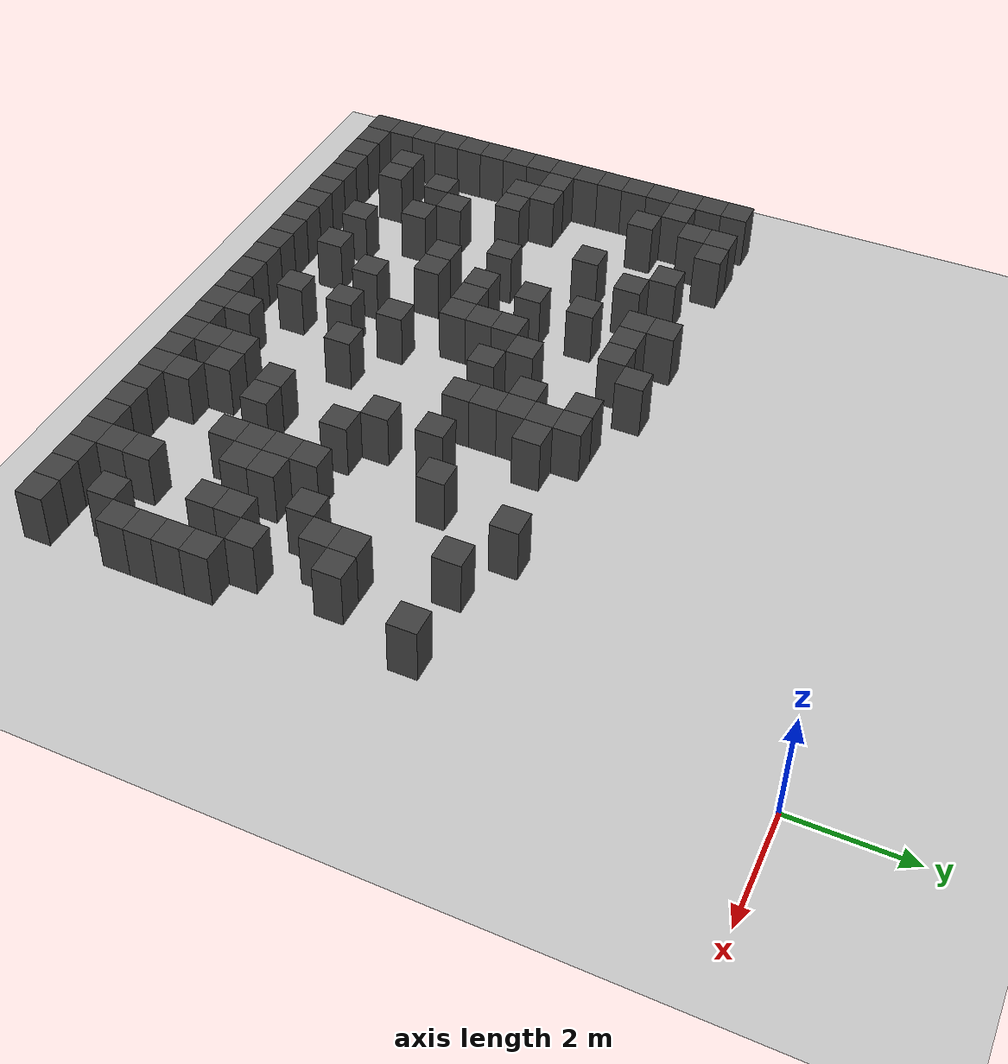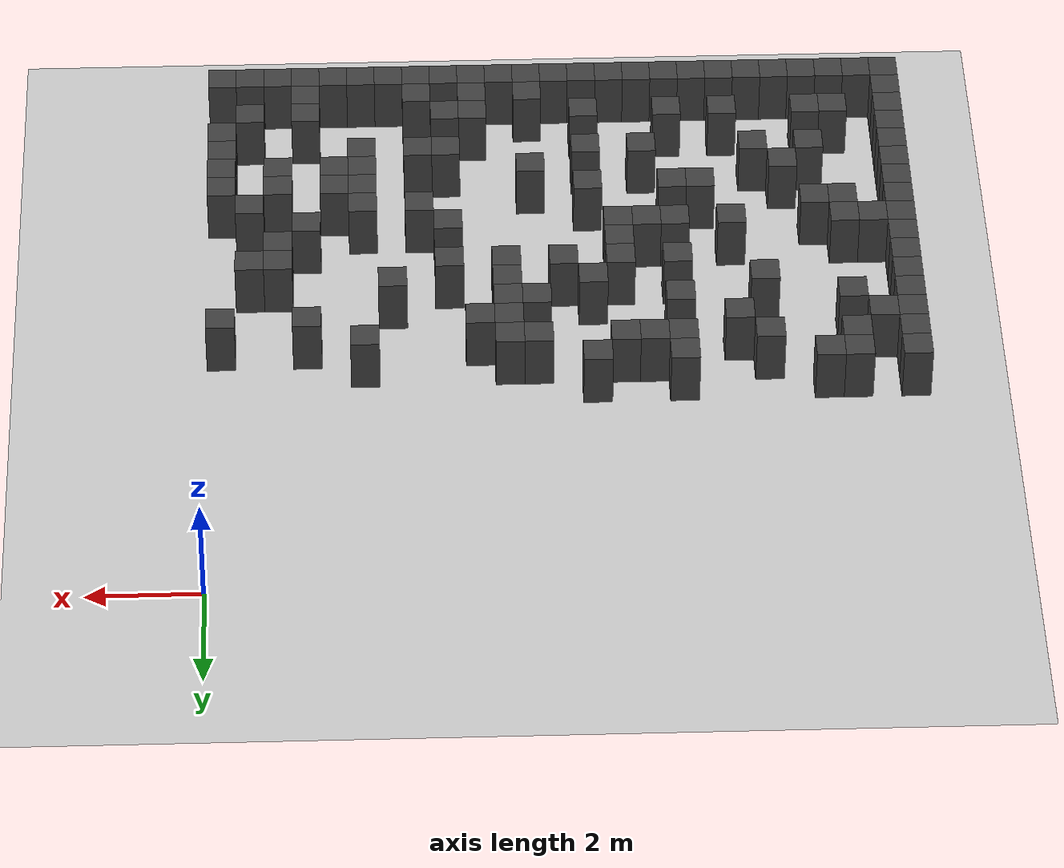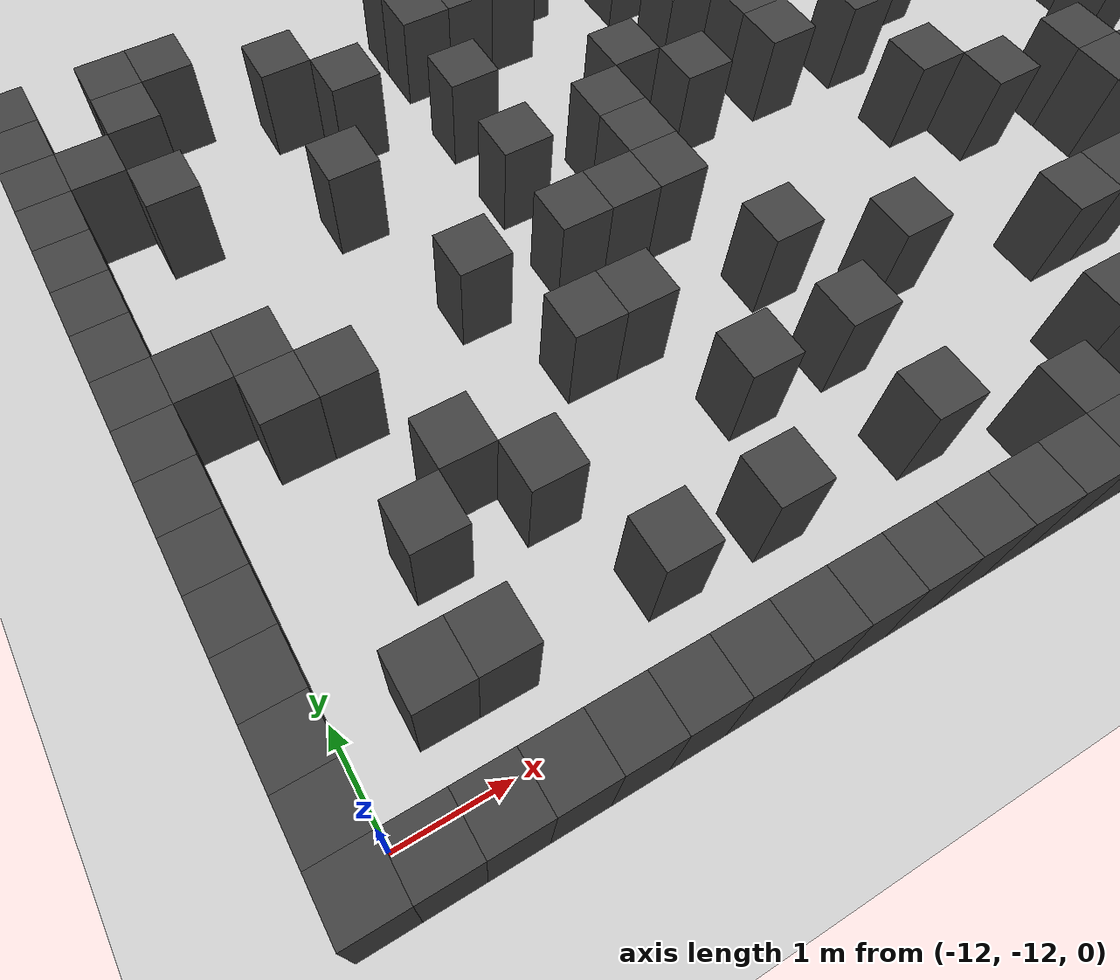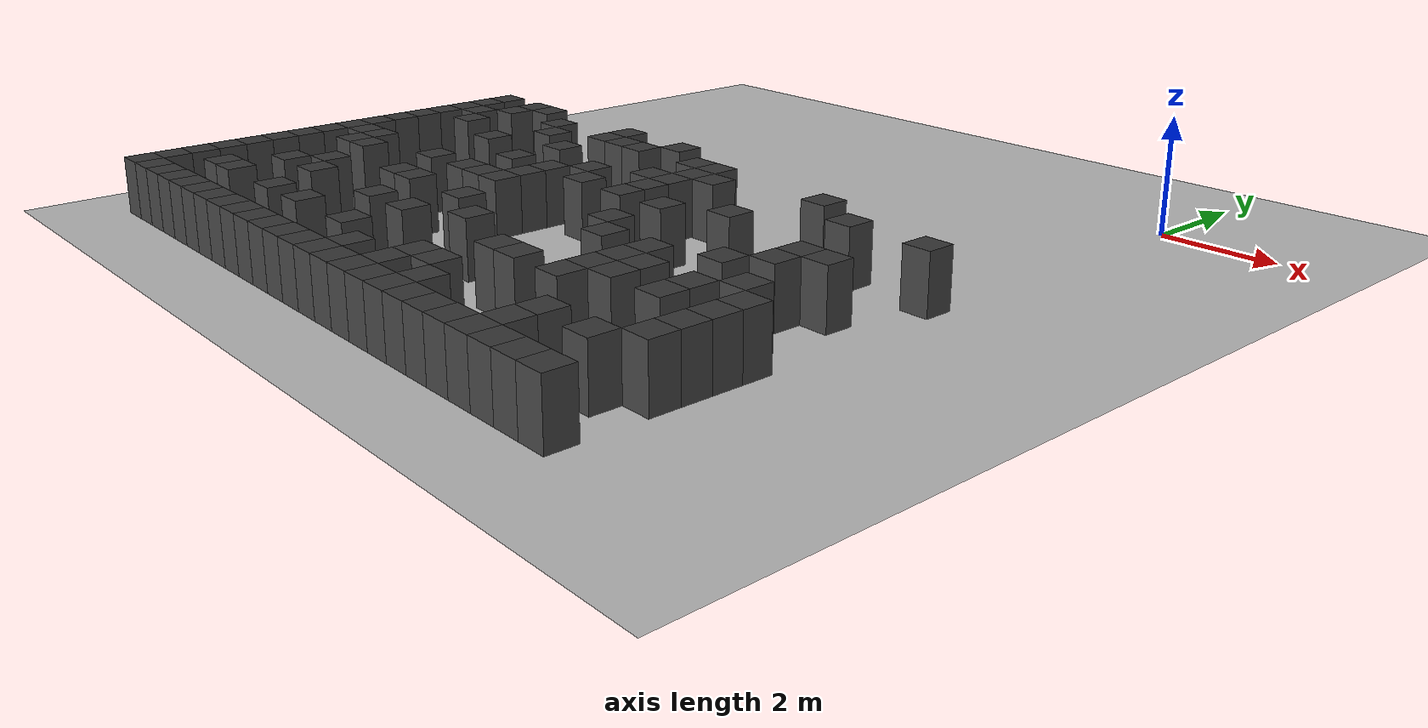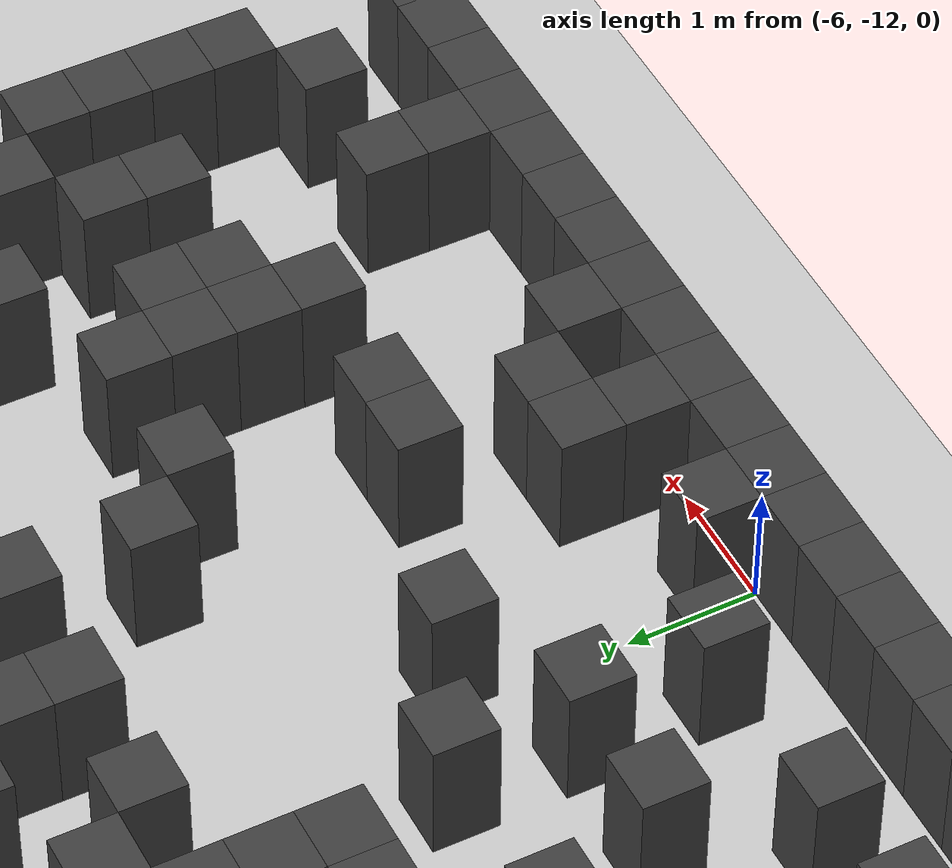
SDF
<sdf version="1.7">
 <world name="map_4951">
  <model name="ground_plane">
   <static>true</static>
   <link name="link">
    <collision name="collision">
     <geometry><plane><normal>0 0 1</normal><size>200 200</size></plane></geometry>
    </collision>
    <visual name="visual">
     <geometry><plane><normal>0 0 1</normal><size>200 200</size></plane></geometry>
     <material><ambient>0.8 0.8 0.8 1</ambient><diffuse>0.8 0.8 0.8 1</diffuse></material>
    </visual>
   </link>
  </model>
  <model name="maze_environment">
   <static>true</static>
   <link name="wall_485">
    <pose>-12.250 -4.750 0.500 0 0 0</pose>
    <collision name="col"><geometry><box><size>0.5 0.5 1.0</size></box></geometry></collision>
    <visual name="vis">
     <geometry><box><size>0.5 0.5 1.0</size></box></geometry>
     <material><ambient>0.15 0.15 0.15 1</ambient><diffuse>0.25 0.25 0.25 1</diffuse></material>
    </visual>
   </link>
   <link name="wall_486">
    <pose>-11.250 -4.750 0.500 0 0 0</pose>
    <collision name="col"><geometry><box><size>0.5 0.5 1.0</size></box></geometry></collision>
    <visual name="vis">
     <geometry><box><size>0.5 0.5 1.0</size></box></geometry>
     <material><ambient>0.15 0.15 0.15 1</ambient><diffuse>0.25 0.25 0.25 1</diffuse></material>
    </visual>
   </link>
   <link name="wall_487">
    <pose>-10.750 -4.750 0.500 0 0 0</pose>
    <collision name="col"><geometry><box><size>0.5 0.5 1.0</size></box></geometry></collision>
    <visual name="vis">
     <geometry><box><size>0.5 0.5 1.0</size></box></geometry>
     <material><ambient>0.15 0.15 0.15 1</ambient><diffuse>0.25 0.25 0.25 1</diffuse></material>
    </visual>
   </link>
   <link name="wall_488">
    <pose>-8.250 -4.750 0.500 0 0 0</pose>
    <collision name="col"><geometry><box><size>0.5 0.5 1.0</size></box></geometry></collision>
    <visual name="vis">
     <geometry><box><size>0.5 0.5 1.0</size></box></geometry>
     <material><ambient>0.15 0.15 0.15 1</ambient><diffuse>0.25 0.25 0.25 1</diffuse></material>
    </visual>
   </link>
   <link name="wall_489">
    <pose>-6.750 -4.750 0.500 0 0 0</pose>
    <collision name="col"><geometry><box><size>0.5 0.5 1.0</size></box></geometry></collision>
    <visual name="vis">
     <geometry><box><size>0.5 0.5 1.0</size></box></geometry>
     <material><ambient>0.15 0.15 0.15 1</ambient><diffuse>0.25 0.25 0.25 1</diffuse></material>
    </visual>
   </link>
   <link name="wall_501">
    <pose>-12.250 -5.250 0.500 0 0 0</pose>
    <collision name="col"><geometry><box><size>0.5 0.5 1.0</size></box></geometry></collision>
    <visual name="vis">
     <geometry><box><size>0.5 0.5 1.0</size></box></geometry>
     <material><ambient>0.15 0.15 0.15 1</ambient><diffuse>0.25 0.25 0.25 1</diffuse></material>
    </visual>
   </link>
   <link name="wall_502">
    <pose>-11.250 -5.250 0.500 0 0 0</pose>
    <collision name="col"><geometry><box><size>0.5 0.5 1.0</size></box></geometry></collision>
    <visual name="vis">
     <geometry><box><size>0.5 0.5 1.0</size></box></geometry>
     <material><ambient>0.15 0.15 0.15 1</ambient><diffuse>0.25 0.25 0.25 1</diffuse></material>
    </visual>
   </link>
   <link name="wall_503">
    <pose>-9.750 -5.250 0.500 0 0 0</pose>
    <collision name="col"><geometry><box><size>0.5 0.5 1.0</size></box></geometry></collision>
    <visual name="vis">
     <geometry><box><size>0.5 0.5 1.0</size></box></geometry>
     <material><ambient>0.15 0.15 0.15 1</ambient><diffuse>0.25 0.25 0.25 1</diffuse></material>
    </visual>
   </link>
   <link name="wall_504">
    <pose>-8.250 -5.250 0.500 0 0 0</pose>
    <collision name="col"><geometry><box><size>0.5 0.5 1.0</size></box></geometry></collision>
    <visual name="vis">
     <geometry><box><size>0.5 0.5 1.0</size></box></geometry>
     <material><ambient>0.15 0.15 0.15 1</ambient><diffuse>0.25 0.25 0.25 1</diffuse></material>
    </visual>
   </link>
   <link name="wall_505">
    <pose>-7.750 -5.250 0.500 0 0 0</pose>
    <collision name="col"><geometry><box><size>0.5 0.5 1.0</size></box></geometry></collision>
    <visual name="vis">
     <geometry><box><size>0.5 0.5 1.0</size></box></geometry>
     <material><ambient>0.15 0.15 0.15 1</ambient><diffuse>0.25 0.25 0.25 1</diffuse></material>
    </visual>
   </link>
   <link name="wall_506">
    <pose>-7.250 -5.250 0.500 0 0 0</pose>
    <collision name="col"><geometry><box><size>0.5 0.5 1.0</size></box></geometry></collision>
    <visual name="vis">
     <geometry><box><size>0.5 0.5 1.0</size></box></geometry>
     <material><ambient>0.15 0.15 0.15 1</ambient><diffuse>0.25 0.25 0.25 1</diffuse></material>
    </visual>
   </link>
   <link name="wall_507">
    <pose>-5.750 -5.250 0.500 0 0 0</pose>
    <collision name="col"><geometry><box><size>0.5 0.5 1.0</size></box></geometry></collision>
    <visual name="vis">
     <geometry><box><size>0.5 0.5 1.0</size></box></geometry>
     <material><ambient>0.15 0.15 0.15 1</ambient><diffuse>0.25 0.25 0.25 1</diffuse></material>
    </visual>
   </link>
   <link name="wall_508">
    <pose>-5.250 -5.250 0.500 0 0 0</pose>
    <collision name="col"><geometry><box><size>0.5 0.5 1.0</size></box></geometry></collision>
    <visual name="vis">
     <geometry><box><size>0.5 0.5 1.0</size></box></geometry>
     <material><ambient>0.15 0.15 0.15 1</ambient><diffuse>0.25 0.25 0.25 1</diffuse></material>
    </visual>
   </link>
   <link name="wall_509">
    <pose>-2.750 -5.250 0.500 0 0 0</pose>
    <collision name="col"><geometry><box><size>0.5 0.5 1.0</size></box></geometry></collision>
    <visual name="vis">
     <geometry><box><size>0.5 0.5 1.0</size></box></geometry>
     <material><ambient>0.15 0.15 0.15 1</ambient><diffuse>0.25 0.25 0.25 1</diffuse></material>
    </visual>
   </link>
   <link name="wall_517">
    <pose>-12.250 -5.750 0.500 0 0 0</pose>
    <collision name="col"><geometry><box><size>0.5 0.5 1.0</size></box></geometry></collision>
    <visual name="vis">
     <geometry><box><size>0.5 0.5 1.0</size></box></geometry>
     <material><ambient>0.15 0.15 0.15 1</ambient><diffuse>0.25 0.25 0.25 1</diffuse></material>
    </visual>
   </link>
   <link name="wall_518">
    <pose>-11.750 -5.750 0.500 0 0 0</pose>
    <collision name="col"><geometry><box><size>0.5 0.5 1.0</size></box></geometry></collision>
    <visual name="vis">
     <geometry><box><size>0.5 0.5 1.0</size></box></geometry>
     <material><ambient>0.15 0.15 0.15 1</ambient><diffuse>0.25 0.25 0.25 1</diffuse></material>
    </visual>
   </link>
   <link name="wall_519">
    <pose>-9.250 -5.750 0.500 0 0 0</pose>
    <collision name="col"><geometry><box><size>0.5 0.5 1.0</size></box></geometry></collision>
    <visual name="vis">
     <geometry><box><size>0.5 0.5 1.0</size></box></geometry>
     <material><ambient>0.15 0.15 0.15 1</ambient><diffuse>0.25 0.25 0.25 1</diffuse></material>
    </visual>
   </link>
   <link name="wall_520">
    <pose>-5.250 -5.750 0.500 0 0 0</pose>
    <collision name="col"><geometry><box><size>0.5 0.5 1.0</size></box></geometry></collision>
    <visual name="vis">
     <geometry><box><size>0.5 0.5 1.0</size></box></geometry>
     <material><ambient>0.15 0.15 0.15 1</ambient><diffuse>0.25 0.25 0.25 1</diffuse></material>
    </visual>
   </link>
   <link name="wall_521">
    <pose>-4.750 -5.750 0.500 0 0 0</pose>
    <collision name="col"><geometry><box><size>0.5 0.5 1.0</size></box></geometry></collision>
    <visual name="vis">
     <geometry><box><size>0.5 0.5 1.0</size></box></geometry>
     <material><ambient>0.15 0.15 0.15 1</ambient><diffuse>0.25 0.25 0.25 1</diffuse></material>
    </visual>
   </link>
   <link name="wall_522">
    <pose>-1.750 -5.750 0.500 0 0 0</pose>
    <collision name="col"><geometry><box><size>0.5 0.5 1.0</size></box></geometry></collision>
    <visual name="vis">
     <geometry><box><size>0.5 0.5 1.0</size></box></geometry>
     <material><ambient>0.15 0.15 0.15 1</ambient><diffuse>0.25 0.25 0.25 1</diffuse></material>
    </visual>
   </link>
   <link name="wall_523">
    <pose>-0.250 -5.750 0.500 0 0 0</pose>
    <collision name="col"><geometry><box><size>0.5 0.5 1.0</size></box></geometry></collision>
    <visual name="vis">
     <geometry><box><size>0.5 0.5 1.0</size></box></geometry>
     <material><ambient>0.15 0.15 0.15 1</ambient><diffuse>0.25 0.25 0.25 1</diffuse></material>
    </visual>
   </link>
   <link name="wall_529">
    <pose>-12.250 -6.250 0.500 0 0 0</pose>
    <collision name="col"><geometry><box><size>0.5 0.5 1.0</size></box></geometry></collision>
    <visual name="vis">
     <geometry><box><size>0.5 0.5 1.0</size></box></geometry>
     <material><ambient>0.15 0.15 0.15 1</ambient><diffuse>0.25 0.25 0.25 1</diffuse></material>
    </visual>
   </link>
   <link name="wall_530">
    <pose>-11.250 -6.250 0.500 0 0 0</pose>
    <collision name="col"><geometry><box><size>0.5 0.5 1.0</size></box></geometry></collision>
    <visual name="vis">
     <geometry><box><size>0.5 0.5 1.0</size></box></geometry>
     <material><ambient>0.15 0.15 0.15 1</ambient><diffuse>0.25 0.25 0.25 1</diffuse></material>
    </visual>
   </link>
   <link name="wall_531">
    <pose>-8.250 -6.250 0.500 0 0 0</pose>
    <collision name="col"><geometry><box><size>0.5 0.5 1.0</size></box></geometry></collision>
    <visual name="vis">
     <geometry><box><size>0.5 0.5 1.0</size></box></geometry>
     <material><ambient>0.15 0.15 0.15 1</ambient><diffuse>0.25 0.25 0.25 1</diffuse></material>
    </visual>
   </link>
   <link name="wall_532">
    <pose>-5.750 -6.250 0.500 0 0 0</pose>
    <collision name="col"><geometry><box><size>0.5 0.5 1.0</size></box></geometry></collision>
    <visual name="vis">
     <geometry><box><size>0.5 0.5 1.0</size></box></geometry>
     <material><ambient>0.15 0.15 0.15 1</ambient><diffuse>0.25 0.25 0.25 1</diffuse></material>
    </visual>
   </link>
   <link name="wall_533">
    <pose>-5.250 -6.250 0.500 0 0 0</pose>
    <collision name="col"><geometry><box><size>0.5 0.5 1.0</size></box></geometry></collision>
    <visual name="vis">
     <geometry><box><size>0.5 0.5 1.0</size></box></geometry>
     <material><ambient>0.15 0.15 0.15 1</ambient><diffuse>0.25 0.25 0.25 1</diffuse></material>
    </visual>
   </link>
   <link name="wall_540">
    <pose>-12.250 -6.750 0.500 0 0 0</pose>
    <collision name="col"><geometry><box><size>0.5 0.5 1.0</size></box></geometry></collision>
    <visual name="vis">
     <geometry><box><size>0.5 0.5 1.0</size></box></geometry>
     <material><ambient>0.15 0.15 0.15 1</ambient><diffuse>0.25 0.25 0.25 1</diffuse></material>
    </visual>
   </link>
   <link name="wall_541">
    <pose>-9.750 -6.750 0.500 0 0 0</pose>
    <collision name="col"><geometry><box><size>0.5 0.5 1.0</size></box></geometry></collision>
    <visual name="vis">
     <geometry><box><size>0.5 0.5 1.0</size></box></geometry>
     <material><ambient>0.15 0.15 0.15 1</ambient><diffuse>0.25 0.25 0.25 1</diffuse></material>
    </visual>
   </link>
   <link name="wall_542">
    <pose>-6.750 -6.750 0.500 0 0 0</pose>
    <collision name="col"><geometry><box><size>0.5 0.5 1.0</size></box></geometry></collision>
    <visual name="vis">
     <geometry><box><size>0.5 0.5 1.0</size></box></geometry>
     <material><ambient>0.15 0.15 0.15 1</ambient><diffuse>0.25 0.25 0.25 1</diffuse></material>
    </visual>
   </link>
   <link name="wall_543">
    <pose>-5.250 -6.750 0.500 0 0 0</pose>
    <collision name="col"><geometry><box><size>0.5 0.5 1.0</size></box></geometry></collision>
    <visual name="vis">
     <geometry><box><size>0.5 0.5 1.0</size></box></geometry>
     <material><ambient>0.15 0.15 0.15 1</ambient><diffuse>0.25 0.25 0.25 1</diffuse></material>
    </visual>
   </link>
   <link name="wall_544">
    <pose>-3.250 -6.750 0.500 0 0 0</pose>
    <collision name="col"><geometry><box><size>0.5 0.5 1.0</size></box></geometry></collision>
    <visual name="vis">
     <geometry><box><size>0.5 0.5 1.0</size></box></geometry>
     <material><ambient>0.15 0.15 0.15 1</ambient><diffuse>0.25 0.25 0.25 1</diffuse></material>
    </visual>
   </link>
   <link name="wall_551">
    <pose>-12.250 -7.250 0.500 0 0 0</pose>
    <collision name="col"><geometry><box><size>0.5 0.5 1.0</size></box></geometry></collision>
    <visual name="vis">
     <geometry><box><size>0.5 0.5 1.0</size></box></geometry>
     <material><ambient>0.15 0.15 0.15 1</ambient><diffuse>0.25 0.25 0.25 1</diffuse></material>
    </visual>
   </link>
   <link name="wall_552">
    <pose>-8.250 -7.250 0.500 0 0 0</pose>
    <collision name="col"><geometry><box><size>0.5 0.5 1.0</size></box></geometry></collision>
    <visual name="vis">
     <geometry><box><size>0.5 0.5 1.0</size></box></geometry>
     <material><ambient>0.15 0.15 0.15 1</ambient><diffuse>0.25 0.25 0.25 1</diffuse></material>
    </visual>
   </link>
   <link name="wall_553">
    <pose>-7.250 -7.250 0.500 0 0 0</pose>
    <collision name="col"><geometry><box><size>0.5 0.5 1.0</size></box></geometry></collision>
    <visual name="vis">
     <geometry><box><size>0.5 0.5 1.0</size></box></geometry>
     <material><ambient>0.15 0.15 0.15 1</ambient><diffuse>0.25 0.25 0.25 1</diffuse></material>
    </visual>
   </link>
   <link name="wall_554">
    <pose>-6.250 -7.250 0.500 0 0 0</pose>
    <collision name="col"><geometry><box><size>0.5 0.5 1.0</size></box></geometry></collision>
    <visual name="vis">
     <geometry><box><size>0.5 0.5 1.0</size></box></geometry>
     <material><ambient>0.15 0.15 0.15 1</ambient><diffuse>0.25 0.25 0.25 1</diffuse></material>
    </visual>
   </link>
   <link name="wall_555">
    <pose>-5.250 -7.250 0.500 0 0 0</pose>
    <collision name="col"><geometry><box><size>0.5 0.5 1.0</size></box></geometry></collision>
    <visual name="vis">
     <geometry><box><size>0.5 0.5 1.0</size></box></geometry>
     <material><ambient>0.15 0.15 0.15 1</ambient><diffuse>0.25 0.25 0.25 1</diffuse></material>
    </visual>
   </link>
   <link name="wall_556">
    <pose>-4.250 -7.250 0.500 0 0 0</pose>
    <collision name="col"><geometry><box><size>0.5 0.5 1.0</size></box></geometry></collision>
    <visual name="vis">
     <geometry><box><size>0.5 0.5 1.0</size></box></geometry>
     <material><ambient>0.15 0.15 0.15 1</ambient><diffuse>0.25 0.25 0.25 1</diffuse></material>
    </visual>
   </link>
   <link name="wall_557">
    <pose>-1.250 -7.250 0.500 0 0 0</pose>
    <collision name="col"><geometry><box><size>0.5 0.5 1.0</size></box></geometry></collision>
    <visual name="vis">
     <geometry><box><size>0.5 0.5 1.0</size></box></geometry>
     <material><ambient>0.15 0.15 0.15 1</ambient><diffuse>0.25 0.25 0.25 1</diffuse></material>
    </visual>
   </link>
   <link name="wall_558">
    <pose>-0.750 -7.250 0.500 0 0 0</pose>
    <collision name="col"><geometry><box><size>0.5 0.5 1.0</size></box></geometry></collision>
    <visual name="vis">
     <geometry><box><size>0.5 0.5 1.0</size></box></geometry>
     <material><ambient>0.15 0.15 0.15 1</ambient><diffuse>0.25 0.25 0.25 1</diffuse></material>
    </visual>
   </link>
   <link name="wall_567">
    <pose>-12.250 -7.750 0.500 0 0 0</pose>
    <collision name="col"><geometry><box><size>0.5 0.5 1.0</size></box></geometry></collision>
    <visual name="vis">
     <geometry><box><size>0.5 0.5 1.0</size></box></geometry>
     <material><ambient>0.15 0.15 0.15 1</ambient><diffuse>0.25 0.25 0.25 1</diffuse></material>
    </visual>
   </link>
   <link name="wall_568">
    <pose>-7.250 -7.750 0.500 0 0 0</pose>
    <collision name="col"><geometry><box><size>0.5 0.5 1.0</size></box></geometry></collision>
    <visual name="vis">
     <geometry><box><size>0.5 0.5 1.0</size></box></geometry>
     <material><ambient>0.15 0.15 0.15 1</ambient><diffuse>0.25 0.25 0.25 1</diffuse></material>
    </visual>
   </link>
   <link name="wall_569">
    <pose>-1.250 -7.750 0.500 0 0 0</pose>
    <collision name="col"><geometry><box><size>0.5 0.5 1.0</size></box></geometry></collision>
    <visual name="vis">
     <geometry><box><size>0.5 0.5 1.0</size></box></geometry>
     <material><ambient>0.15 0.15 0.15 1</ambient><diffuse>0.25 0.25 0.25 1</diffuse></material>
    </visual>
   </link>
   <link name="wall_579">
    <pose>-12.250 -8.250 0.500 0 0 0</pose>
    <collision name="col"><geometry><box><size>0.5 0.5 1.0</size></box></geometry></collision>
    <visual name="vis">
     <geometry><box><size>0.5 0.5 1.0</size></box></geometry>
     <material><ambient>0.15 0.15 0.15 1</ambient><diffuse>0.25 0.25 0.25 1</diffuse></material>
    </visual>
   </link>
   <link name="wall_580">
    <pose>-11.750 -8.250 0.500 0 0 0</pose>
    <collision name="col"><geometry><box><size>0.5 0.5 1.0</size></box></geometry></collision>
    <visual name="vis">
     <geometry><box><size>0.5 0.5 1.0</size></box></geometry>
     <material><ambient>0.15 0.15 0.15 1</ambient><diffuse>0.25 0.25 0.25 1</diffuse></material>
    </visual>
   </link>
   <link name="wall_581">
    <pose>-11.250 -8.250 0.500 0 0 0</pose>
    <collision name="col"><geometry><box><size>0.5 0.5 1.0</size></box></geometry></collision>
    <visual name="vis">
     <geometry><box><size>0.5 0.5 1.0</size></box></geometry>
     <material><ambient>0.15 0.15 0.15 1</ambient><diffuse>0.25 0.25 0.25 1</diffuse></material>
    </visual>
   </link>
   <link name="wall_582">
    <pose>-9.250 -8.250 0.500 0 0 0</pose>
    <collision name="col"><geometry><box><size>0.5 0.5 1.0</size></box></geometry></collision>
    <visual name="vis">
     <geometry><box><size>0.5 0.5 1.0</size></box></geometry>
     <material><ambient>0.15 0.15 0.15 1</ambient><diffuse>0.25 0.25 0.25 1</diffuse></material>
    </visual>
   </link>
   <link name="wall_583">
    <pose>-8.250 -8.250 0.500 0 0 0</pose>
    <collision name="col"><geometry><box><size>0.5 0.5 1.0</size></box></geometry></collision>
    <visual name="vis">
     <geometry><box><size>0.5 0.5 1.0</size></box></geometry>
     <material><ambient>0.15 0.15 0.15 1</ambient><diffuse>0.25 0.25 0.25 1</diffuse></material>
    </visual>
   </link>
   <link name="wall_584">
    <pose>-7.750 -8.250 0.500 0 0 0</pose>
    <collision name="col"><geometry><box><size>0.5 0.5 1.0</size></box></geometry></collision>
    <visual name="vis">
     <geometry><box><size>0.5 0.5 1.0</size></box></geometry>
     <material><ambient>0.15 0.15 0.15 1</ambient><diffuse>0.25 0.25 0.25 1</diffuse></material>
    </visual>
   </link>
   <link name="wall_585">
    <pose>-7.250 -8.250 0.500 0 0 0</pose>
    <collision name="col"><geometry><box><size>0.5 0.5 1.0</size></box></geometry></collision>
    <visual name="vis">
     <geometry><box><size>0.5 0.5 1.0</size></box></geometry>
     <material><ambient>0.15 0.15 0.15 1</ambient><diffuse>0.25 0.25 0.25 1</diffuse></material>
    </visual>
   </link>
   <link name="wall_586">
    <pose>-4.250 -8.250 0.500 0 0 0</pose>
    <collision name="col"><geometry><box><size>0.5 0.5 1.0</size></box></geometry></collision>
    <visual name="vis">
     <geometry><box><size>0.5 0.5 1.0</size></box></geometry>
     <material><ambient>0.15 0.15 0.15 1</ambient><diffuse>0.25 0.25 0.25 1</diffuse></material>
    </visual>
   </link>
   <link name="wall_587">
    <pose>-1.750 -8.250 0.500 0 0 0</pose>
    <collision name="col"><geometry><box><size>0.5 0.5 1.0</size></box></geometry></collision>
    <visual name="vis">
     <geometry><box><size>0.5 0.5 1.0</size></box></geometry>
     <material><ambient>0.15 0.15 0.15 1</ambient><diffuse>0.25 0.25 0.25 1</diffuse></material>
    </visual>
   </link>
   <link name="wall_596">
    <pose>-12.250 -8.750 0.500 0 0 0</pose>
    <collision name="col"><geometry><box><size>0.5 0.5 1.0</size></box></geometry></collision>
    <visual name="vis">
     <geometry><box><size>0.5 0.5 1.0</size></box></geometry>
     <material><ambient>0.15 0.15 0.15 1</ambient><diffuse>0.25 0.25 0.25 1</diffuse></material>
    </visual>
   </link>
   <link name="wall_597">
    <pose>-11.250 -8.750 0.500 0 0 0</pose>
    <collision name="col"><geometry><box><size>0.5 0.5 1.0</size></box></geometry></collision>
    <visual name="vis">
     <geometry><box><size>0.5 0.5 1.0</size></box></geometry>
     <material><ambient>0.15 0.15 0.15 1</ambient><diffuse>0.25 0.25 0.25 1</diffuse></material>
    </visual>
   </link>
   <link name="wall_598">
    <pose>-10.750 -8.750 0.500 0 0 0</pose>
    <collision name="col"><geometry><box><size>0.5 0.5 1.0</size></box></geometry></collision>
    <visual name="vis">
     <geometry><box><size>0.5 0.5 1.0</size></box></geometry>
     <material><ambient>0.15 0.15 0.15 1</ambient><diffuse>0.25 0.25 0.25 1</diffuse></material>
    </visual>
   </link>
   <link name="wall_599">
    <pose>-3.750 -8.750 0.500 0 0 0</pose>
    <collision name="col"><geometry><box><size>0.5 0.5 1.0</size></box></geometry></collision>
    <visual name="vis">
     <geometry><box><size>0.5 0.5 1.0</size></box></geometry>
     <material><ambient>0.15 0.15 0.15 1</ambient><diffuse>0.25 0.25 0.25 1</diffuse></material>
    </visual>
   </link>
   <link name="wall_600">
    <pose>-2.750 -8.750 0.500 0 0 0</pose>
    <collision name="col"><geometry><box><size>0.5 0.5 1.0</size></box></geometry></collision>
    <visual name="vis">
     <geometry><box><size>0.5 0.5 1.0</size></box></geometry>
     <material><ambient>0.15 0.15 0.15 1</ambient><diffuse>0.25 0.25 0.25 1</diffuse></material>
    </visual>
   </link>
   <link name="wall_601">
    <pose>-0.750 -8.750 0.500 0 0 0</pose>
    <collision name="col"><geometry><box><size>0.5 0.5 1.0</size></box></geometry></collision>
    <visual name="vis">
     <geometry><box><size>0.5 0.5 1.0</size></box></geometry>
     <material><ambient>0.15 0.15 0.15 1</ambient><diffuse>0.25 0.25 0.25 1</diffuse></material>
    </visual>
   </link>
   <link name="wall_609">
    <pose>-12.250 -9.250 0.500 0 0 0</pose>
    <collision name="col"><geometry><box><size>0.5 0.5 1.0</size></box></geometry></collision>
    <visual name="vis">
     <geometry><box><size>0.5 0.5 1.0</size></box></geometry>
     <material><ambient>0.15 0.15 0.15 1</ambient><diffuse>0.25 0.25 0.25 1</diffuse></material>
    </visual>
   </link>
   <link name="wall_610">
    <pose>-8.750 -9.250 0.500 0 0 0</pose>
    <collision name="col"><geometry><box><size>0.5 0.5 1.0</size></box></geometry></collision>
    <visual name="vis">
     <geometry><box><size>0.5 0.5 1.0</size></box></geometry>
     <material><ambient>0.15 0.15 0.15 1</ambient><diffuse>0.25 0.25 0.25 1</diffuse></material>
    </visual>
   </link>
   <link name="wall_611">
    <pose>-8.250 -9.250 0.500 0 0 0</pose>
    <collision name="col"><geometry><box><size>0.5 0.5 1.0</size></box></geometry></collision>
    <visual name="vis">
     <geometry><box><size>0.5 0.5 1.0</size></box></geometry>
     <material><ambient>0.15 0.15 0.15 1</ambient><diffuse>0.25 0.25 0.25 1</diffuse></material>
    </visual>
   </link>
   <link name="wall_612">
    <pose>-6.750 -9.250 0.500 0 0 0</pose>
    <collision name="col"><geometry><box><size>0.5 0.5 1.0</size></box></geometry></collision>
    <visual name="vis">
     <geometry><box><size>0.5 0.5 1.0</size></box></geometry>
     <material><ambient>0.15 0.15 0.15 1</ambient><diffuse>0.25 0.25 0.25 1</diffuse></material>
    </visual>
   </link>
   <link name="wall_613">
    <pose>-2.750 -9.250 0.500 0 0 0</pose>
    <collision name="col"><geometry><box><size>0.5 0.5 1.0</size></box></geometry></collision>
    <visual name="vis">
     <geometry><box><size>0.5 0.5 1.0</size></box></geometry>
     <material><ambient>0.15 0.15 0.15 1</ambient><diffuse>0.25 0.25 0.25 1</diffuse></material>
    </visual>
   </link>
   <link name="wall_614">
    <pose>-2.250 -9.250 0.500 0 0 0</pose>
    <collision name="col"><geometry><box><size>0.5 0.5 1.0</size></box></geometry></collision>
    <visual name="vis">
     <geometry><box><size>0.5 0.5 1.0</size></box></geometry>
     <material><ambient>0.15 0.15 0.15 1</ambient><diffuse>0.25 0.25 0.25 1</diffuse></material>
    </visual>
   </link>
   <link name="wall_615">
    <pose>-1.250 -9.250 0.500 0 0 0</pose>
    <collision name="col"><geometry><box><size>0.5 0.5 1.0</size></box></geometry></collision>
    <visual name="vis">
     <geometry><box><size>0.5 0.5 1.0</size></box></geometry>
     <material><ambient>0.15 0.15 0.15 1</ambient><diffuse>0.25 0.25 0.25 1</diffuse></material>
    </visual>
   </link>
   <link name="wall_616">
    <pose>-0.250 -9.250 0.500 0 0 0</pose>
    <collision name="col"><geometry><box><size>0.5 0.5 1.0</size></box></geometry></collision>
    <visual name="vis">
     <geometry><box><size>0.5 0.5 1.0</size></box></geometry>
     <material><ambient>0.15 0.15 0.15 1</ambient><diffuse>0.25 0.25 0.25 1</diffuse></material>
    </visual>
   </link>
   <link name="wall_625">
    <pose>-12.250 -9.750 0.500 0 0 0</pose>
    <collision name="col"><geometry><box><size>0.5 0.5 1.0</size></box></geometry></collision>
    <visual name="vis">
     <geometry><box><size>0.5 0.5 1.0</size></box></geometry>
     <material><ambient>0.15 0.15 0.15 1</ambient><diffuse>0.25 0.25 0.25 1</diffuse></material>
    </visual>
   </link>
   <link name="wall_626">
    <pose>-10.250 -9.750 0.500 0 0 0</pose>
    <collision name="col"><geometry><box><size>0.5 0.5 1.0</size></box></geometry></collision>
    <visual name="vis">
     <geometry><box><size>0.5 0.5 1.0</size></box></geometry>
     <material><ambient>0.15 0.15 0.15 1</ambient><diffuse>0.25 0.25 0.25 1</diffuse></material>
    </visual>
   </link>
   <link name="wall_627">
    <pose>-5.750 -9.750 0.500 0 0 0</pose>
    <collision name="col"><geometry><box><size>0.5 0.5 1.0</size></box></geometry></collision>
    <visual name="vis">
     <geometry><box><size>0.5 0.5 1.0</size></box></geometry>
     <material><ambient>0.15 0.15 0.15 1</ambient><diffuse>0.25 0.25 0.25 1</diffuse></material>
    </visual>
   </link>
   <link name="wall_628">
    <pose>-2.750 -9.750 0.500 0 0 0</pose>
    <collision name="col"><geometry><box><size>0.5 0.5 1.0</size></box></geometry></collision>
    <visual name="vis">
     <geometry><box><size>0.5 0.5 1.0</size></box></geometry>
     <material><ambient>0.15 0.15 0.15 1</ambient><diffuse>0.25 0.25 0.25 1</diffuse></material>
    </visual>
   </link>
   <link name="wall_629">
    <pose>-2.250 -9.750 0.500 0 0 0</pose>
    <collision name="col"><geometry><box><size>0.5 0.5 1.0</size></box></geometry></collision>
    <visual name="vis">
     <geometry><box><size>0.5 0.5 1.0</size></box></geometry>
     <material><ambient>0.15 0.15 0.15 1</ambient><diffuse>0.25 0.25 0.25 1</diffuse></material>
    </visual>
   </link>
   <link name="wall_630">
    <pose>-1.250 -9.750 0.500 0 0 0</pose>
    <collision name="col"><geometry><box><size>0.5 0.5 1.0</size></box></geometry></collision>
    <visual name="vis">
     <geometry><box><size>0.5 0.5 1.0</size></box></geometry>
     <material><ambient>0.15 0.15 0.15 1</ambient><diffuse>0.25 0.25 0.25 1</diffuse></material>
    </visual>
   </link>
   <link name="wall_631">
    <pose>-0.250 -9.750 0.500 0 0 0</pose>
    <collision name="col"><geometry><box><size>0.5 0.5 1.0</size></box></geometry></collision>
    <visual name="vis">
     <geometry><box><size>0.5 0.5 1.0</size></box></geometry>
     <material><ambient>0.15 0.15 0.15 1</ambient><diffuse>0.25 0.25 0.25 1</diffuse></material>
    </visual>
   </link>
   <link name="wall_635">
    <pose>-12.250 -10.250 0.500 0 0 0</pose>
    <collision name="col"><geometry><box><size>0.5 0.5 1.0</size></box></geometry></collision>
    <visual name="vis">
     <geometry><box><size>0.5 0.5 1.0</size></box></geometry>
     <material><ambient>0.15 0.15 0.15 1</ambient><diffuse>0.25 0.25 0.25 1</diffuse></material>
    </visual>
   </link>
   <link name="wall_636">
    <pose>-10.750 -10.250 0.500 0 0 0</pose>
    <collision name="col"><geometry><box><size>0.5 0.5 1.0</size></box></geometry></collision>
    <visual name="vis">
     <geometry><box><size>0.5 0.5 1.0</size></box></geometry>
     <material><ambient>0.15 0.15 0.15 1</ambient><diffuse>0.25 0.25 0.25 1</diffuse></material>
    </visual>
   </link>
   <link name="wall_637">
    <pose>-9.750 -10.250 0.500 0 0 0</pose>
    <collision name="col"><geometry><box><size>0.5 0.5 1.0</size></box></geometry></collision>
    <visual name="vis">
     <geometry><box><size>0.5 0.5 1.0</size></box></geometry>
     <material><ambient>0.15 0.15 0.15 1</ambient><diffuse>0.25 0.25 0.25 1</diffuse></material>
    </visual>
   </link>
   <link name="wall_638">
    <pose>-7.750 -10.250 0.500 0 0 0</pose>
    <collision name="col"><geometry><box><size>0.5 0.5 1.0</size></box></geometry></collision>
    <visual name="vis">
     <geometry><box><size>0.5 0.5 1.0</size></box></geometry>
     <material><ambient>0.15 0.15 0.15 1</ambient><diffuse>0.25 0.25 0.25 1</diffuse></material>
    </visual>
   </link>
   <link name="wall_639">
    <pose>-6.750 -10.250 0.500 0 0 0</pose>
    <collision name="col"><geometry><box><size>0.5 0.5 1.0</size></box></geometry></collision>
    <visual name="vis">
     <geometry><box><size>0.5 0.5 1.0</size></box></geometry>
     <material><ambient>0.15 0.15 0.15 1</ambient><diffuse>0.25 0.25 0.25 1</diffuse></material>
    </visual>
   </link>
   <link name="wall_640">
    <pose>-4.250 -10.250 0.500 0 0 0</pose>
    <collision name="col"><geometry><box><size>0.5 0.5 1.0</size></box></geometry></collision>
    <visual name="vis">
     <geometry><box><size>0.5 0.5 1.0</size></box></geometry>
     <material><ambient>0.15 0.15 0.15 1</ambient><diffuse>0.25 0.25 0.25 1</diffuse></material>
    </visual>
   </link>
   <link name="wall_641">
    <pose>-3.750 -10.250 0.500 0 0 0</pose>
    <collision name="col"><geometry><box><size>0.5 0.5 1.0</size></box></geometry></collision>
    <visual name="vis">
     <geometry><box><size>0.5 0.5 1.0</size></box></geometry>
     <material><ambient>0.15 0.15 0.15 1</ambient><diffuse>0.25 0.25 0.25 1</diffuse></material>
    </visual>
   </link>
   <link name="wall_642">
    <pose>-2.750 -10.250 0.500 0 0 0</pose>
    <collision name="col"><geometry><box><size>0.5 0.5 1.0</size></box></geometry></collision>
    <visual name="vis">
     <geometry><box><size>0.5 0.5 1.0</size></box></geometry>
     <material><ambient>0.15 0.15 0.15 1</ambient><diffuse>0.25 0.25 0.25 1</diffuse></material>
    </visual>
   </link>
   <link name="wall_643">
    <pose>-0.250 -10.250 0.500 0 0 0</pose>
    <collision name="col"><geometry><box><size>0.5 0.5 1.0</size></box></geometry></collision>
    <visual name="vis">
     <geometry><box><size>0.5 0.5 1.0</size></box></geometry>
     <material><ambient>0.15 0.15 0.15 1</ambient><diffuse>0.25 0.25 0.25 1</diffuse></material>
    </visual>
   </link>
   <link name="wall_653">
    <pose>-12.250 -10.750 0.500 0 0 0</pose>
    <collision name="col"><geometry><box><size>0.5 0.5 1.0</size></box></geometry></collision>
    <visual name="vis">
     <geometry><box><size>0.5 0.5 1.0</size></box></geometry>
     <material><ambient>0.15 0.15 0.15 1</ambient><diffuse>0.25 0.25 0.25 1</diffuse></material>
    </visual>
   </link>
   <link name="wall_654">
    <pose>-0.250 -10.750 0.500 0 0 0</pose>
    <collision name="col"><geometry><box><size>0.5 0.5 1.0</size></box></geometry></collision>
    <visual name="vis">
     <geometry><box><size>0.5 0.5 1.0</size></box></geometry>
     <material><ambient>0.15 0.15 0.15 1</ambient><diffuse>0.25 0.25 0.25 1</diffuse></material>
    </visual>
   </link>
   <link name="wall_663">
    <pose>-12.250 -11.250 0.500 0 0 0</pose>
    <collision name="col"><geometry><box><size>0.5 0.5 1.0</size></box></geometry></collision>
    <visual name="vis">
     <geometry><box><size>0.5 0.5 1.0</size></box></geometry>
     <material><ambient>0.15 0.15 0.15 1</ambient><diffuse>0.25 0.25 0.25 1</diffuse></material>
    </visual>
   </link>
   <link name="wall_664">
    <pose>-11.250 -11.250 0.500 0 0 0</pose>
    <collision name="col"><geometry><box><size>0.5 0.5 1.0</size></box></geometry></collision>
    <visual name="vis">
     <geometry><box><size>0.5 0.5 1.0</size></box></geometry>
     <material><ambient>0.15 0.15 0.15 1</ambient><diffuse>0.25 0.25 0.25 1</diffuse></material>
    </visual>
   </link>
   <link name="wall_665">
    <pose>-10.750 -11.250 0.500 0 0 0</pose>
    <collision name="col"><geometry><box><size>0.5 0.5 1.0</size></box></geometry></collision>
    <visual name="vis">
     <geometry><box><size>0.5 0.5 1.0</size></box></geometry>
     <material><ambient>0.15 0.15 0.15 1</ambient><diffuse>0.25 0.25 0.25 1</diffuse></material>
    </visual>
   </link>
   <link name="wall_666">
    <pose>-9.250 -11.250 0.500 0 0 0</pose>
    <collision name="col"><geometry><box><size>0.5 0.5 1.0</size></box></geometry></collision>
    <visual name="vis">
     <geometry><box><size>0.5 0.5 1.0</size></box></geometry>
     <material><ambient>0.15 0.15 0.15 1</ambient><diffuse>0.25 0.25 0.25 1</diffuse></material>
    </visual>
   </link>
   <link name="wall_667">
    <pose>-8.250 -11.250 0.500 0 0 0</pose>
    <collision name="col"><geometry><box><size>0.5 0.5 1.0</size></box></geometry></collision>
    <visual name="vis">
     <geometry><box><size>0.5 0.5 1.0</size></box></geometry>
     <material><ambient>0.15 0.15 0.15 1</ambient><diffuse>0.25 0.25 0.25 1</diffuse></material>
    </visual>
   </link>
   <link name="wall_668">
    <pose>-6.750 -11.250 0.500 0 0 0</pose>
    <collision name="col"><geometry><box><size>0.5 0.5 1.0</size></box></geometry></collision>
    <visual name="vis">
     <geometry><box><size>0.5 0.5 1.0</size></box></geometry>
     <material><ambient>0.15 0.15 0.15 1</ambient><diffuse>0.25 0.25 0.25 1</diffuse></material>
    </visual>
   </link>
   <link name="wall_669">
    <pose>-4.750 -11.250 0.500 0 0 0</pose>
    <collision name="col"><geometry><box><size>0.5 0.5 1.0</size></box></geometry></collision>
    <visual name="vis">
     <geometry><box><size>0.5 0.5 1.0</size></box></geometry>
     <material><ambient>0.15 0.15 0.15 1</ambient><diffuse>0.25 0.25 0.25 1</diffuse></material>
    </visual>
   </link>
   <link name="wall_670">
    <pose>-4.250 -11.250 0.500 0 0 0</pose>
    <collision name="col"><geometry><box><size>0.5 0.5 1.0</size></box></geometry></collision>
    <visual name="vis">
     <geometry><box><size>0.5 0.5 1.0</size></box></geometry>
     <material><ambient>0.15 0.15 0.15 1</ambient><diffuse>0.25 0.25 0.25 1</diffuse></material>
    </visual>
   </link>
   <link name="wall_671">
    <pose>-1.750 -11.250 0.500 0 0 0</pose>
    <collision name="col"><geometry><box><size>0.5 0.5 1.0</size></box></geometry></collision>
    <visual name="vis">
     <geometry><box><size>0.5 0.5 1.0</size></box></geometry>
     <material><ambient>0.15 0.15 0.15 1</ambient><diffuse>0.25 0.25 0.25 1</diffuse></material>
    </visual>
   </link>
   <link name="wall_672">
    <pose>-0.750 -11.250 0.500 0 0 0</pose>
    <collision name="col"><geometry><box><size>0.5 0.5 1.0</size></box></geometry></collision>
    <visual name="vis">
     <geometry><box><size>0.5 0.5 1.0</size></box></geometry>
     <material><ambient>0.15 0.15 0.15 1</ambient><diffuse>0.25 0.25 0.25 1</diffuse></material>
    </visual>
   </link>
   <link name="wall_683">
    <pose>-12.250 -11.750 0.500 0 0 0</pose>
    <collision name="col"><geometry><box><size>0.5 0.5 1.0</size></box></geometry></collision>
    <visual name="vis">
     <geometry><box><size>0.5 0.5 1.0</size></box></geometry>
     <material><ambient>0.15 0.15 0.15 1</ambient><diffuse>0.25 0.25 0.25 1</diffuse></material>
    </visual>
   </link>
   <link name="wall_684">
    <pose>-5.750 -11.750 0.500 0 0 0</pose>
    <collision name="col"><geometry><box><size>0.5 0.5 1.0</size></box></geometry></collision>
    <visual name="vis">
     <geometry><box><size>0.5 0.5 1.0</size></box></geometry>
     <material><ambient>0.15 0.15 0.15 1</ambient><diffuse>0.25 0.25 0.25 1</diffuse></material>
    </visual>
   </link>
   <link name="wall_685">
    <pose>-4.750 -11.750 0.500 0 0 0</pose>
    <collision name="col"><geometry><box><size>0.5 0.5 1.0</size></box></geometry></collision>
    <visual name="vis">
     <geometry><box><size>0.5 0.5 1.0</size></box></geometry>
     <material><ambient>0.15 0.15 0.15 1</ambient><diffuse>0.25 0.25 0.25 1</diffuse></material>
    </visual>
   </link>
   <link name="wall_686">
    <pose>-3.750 -11.750 0.500 0 0 0</pose>
    <collision name="col"><geometry><box><size>0.5 0.5 1.0</size></box></geometry></collision>
    <visual name="vis">
     <geometry><box><size>0.5 0.5 1.0</size></box></geometry>
     <material><ambient>0.15 0.15 0.15 1</ambient><diffuse>0.25 0.25 0.25 1</diffuse></material>
    </visual>
   </link>
   <link name="wall_687">
    <pose>-1.750 -11.750 0.500 0 0 0</pose>
    <collision name="col"><geometry><box><size>0.5 0.5 1.0</size></box></geometry></collision>
    <visual name="vis">
     <geometry><box><size>0.5 0.5 1.0</size></box></geometry>
     <material><ambient>0.15 0.15 0.15 1</ambient><diffuse>0.25 0.25 0.25 1</diffuse></material>
    </visual>
   </link>
   <link name="wall_691">
    <pose>-12.250 -12.250 0.500 0 0 0</pose>
    <collision name="col"><geometry><box><size>0.5 0.5 1.0</size></box></geometry></collision>
    <visual name="vis">
     <geometry><box><size>0.5 0.5 1.0</size></box></geometry>
     <material><ambient>0.15 0.15 0.15 1</ambient><diffuse>0.25 0.25 0.25 1</diffuse></material>
    </visual>
   </link>
   <link name="wall_692">
    <pose>-11.750 -12.250 0.500 0 0 0</pose>
    <collision name="col"><geometry><box><size>0.5 0.5 1.0</size></box></geometry></collision>
    <visual name="vis">
     <geometry><box><size>0.5 0.5 1.0</size></box></geometry>
     <material><ambient>0.15 0.15 0.15 1</ambient><diffuse>0.25 0.25 0.25 1</diffuse></material>
    </visual>
   </link>
   <link name="wall_693">
    <pose>-11.250 -12.250 0.500 0 0 0</pose>
    <collision name="col"><geometry><box><size>0.5 0.5 1.0</size></box></geometry></collision>
    <visual name="vis">
     <geometry><box><size>0.5 0.5 1.0</size></box></geometry>
     <material><ambient>0.15 0.15 0.15 1</ambient><diffuse>0.25 0.25 0.25 1</diffuse></material>
    </visual>
   </link>
   <link name="wall_694">
    <pose>-10.750 -12.250 0.500 0 0 0</pose>
    <collision name="col"><geometry><box><size>0.5 0.5 1.0</size></box></geometry></collision>
    <visual name="vis">
     <geometry><box><size>0.5 0.5 1.0</size></box></geometry>
     <material><ambient>0.15 0.15 0.15 1</ambient><diffuse>0.25 0.25 0.25 1</diffuse></material>
    </visual>
   </link>
   <link name="wall_695">
    <pose>-10.250 -12.250 0.500 0 0 0</pose>
    <collision name="col"><geometry><box><size>0.5 0.5 1.0</size></box></geometry></collision>
    <visual name="vis">
     <geometry><box><size>0.5 0.5 1.0</size></box></geometry>
     <material><ambient>0.15 0.15 0.15 1</ambient><diffuse>0.25 0.25 0.25 1</diffuse></material>
    </visual>
   </link>
   <link name="wall_696">
    <pose>-9.750 -12.250 0.500 0 0 0</pose>
    <collision name="col"><geometry><box><size>0.5 0.5 1.0</size></box></geometry></collision>
    <visual name="vis">
     <geometry><box><size>0.5 0.5 1.0</size></box></geometry>
     <material><ambient>0.15 0.15 0.15 1</ambient><diffuse>0.25 0.25 0.25 1</diffuse></material>
    </visual>
   </link>
   <link name="wall_697">
    <pose>-9.250 -12.250 0.500 0 0 0</pose>
    <collision name="col"><geometry><box><size>0.5 0.5 1.0</size></box></geometry></collision>
    <visual name="vis">
     <geometry><box><size>0.5 0.5 1.0</size></box></geometry>
     <material><ambient>0.15 0.15 0.15 1</ambient><diffuse>0.25 0.25 0.25 1</diffuse></material>
    </visual>
   </link>
   <link name="wall_698">
    <pose>-8.750 -12.250 0.500 0 0 0</pose>
    <collision name="col"><geometry><box><size>0.5 0.5 1.0</size></box></geometry></collision>
    <visual name="vis">
     <geometry><box><size>0.5 0.5 1.0</size></box></geometry>
     <material><ambient>0.15 0.15 0.15 1</ambient><diffuse>0.25 0.25 0.25 1</diffuse></material>
    </visual>
   </link>
   <link name="wall_699">
    <pose>-8.250 -12.250 0.500 0 0 0</pose>
    <collision name="col"><geometry><box><size>0.5 0.5 1.0</size></box></geometry></collision>
    <visual name="vis">
     <geometry><box><size>0.5 0.5 1.0</size></box></geometry>
     <material><ambient>0.15 0.15 0.15 1</ambient><diffuse>0.25 0.25 0.25 1</diffuse></material>
    </visual>
   </link>
   <link name="wall_700">
    <pose>-7.750 -12.250 0.500 0 0 0</pose>
    <collision name="col"><geometry><box><size>0.5 0.5 1.0</size></box></geometry></collision>
    <visual name="vis">
     <geometry><box><size>0.5 0.5 1.0</size></box></geometry>
     <material><ambient>0.15 0.15 0.15 1</ambient><diffuse>0.25 0.25 0.25 1</diffuse></material>
    </visual>
   </link>
   <link name="wall_701">
    <pose>-7.250 -12.250 0.500 0 0 0</pose>
    <collision name="col"><geometry><box><size>0.5 0.5 1.0</size></box></geometry></collision>
    <visual name="vis">
     <geometry><box><size>0.5 0.5 1.0</size></box></geometry>
     <material><ambient>0.15 0.15 0.15 1</ambient><diffuse>0.25 0.25 0.25 1</diffuse></material>
    </visual>
   </link>
   <link name="wall_702">
    <pose>-6.750 -12.250 0.500 0 0 0</pose>
    <collision name="col"><geometry><box><size>0.5 0.5 1.0</size></box></geometry></collision>
    <visual name="vis">
     <geometry><box><size>0.5 0.5 1.0</size></box></geometry>
     <material><ambient>0.15 0.15 0.15 1</ambient><diffuse>0.25 0.25 0.25 1</diffuse></material>
    </visual>
   </link>
   <link name="wall_703">
    <pose>-6.250 -12.250 0.500 0 0 0</pose>
    <collision name="col"><geometry><box><size>0.5 0.5 1.0</size></box></geometry></collision>
    <visual name="vis">
     <geometry><box><size>0.5 0.5 1.0</size></box></geometry>
     <material><ambient>0.15 0.15 0.15 1</ambient><diffuse>0.25 0.25 0.25 1</diffuse></material>
    </visual>
   </link>
   <link name="wall_704">
    <pose>-5.750 -12.250 0.500 0 0 0</pose>
    <collision name="col"><geometry><box><size>0.5 0.5 1.0</size></box></geometry></collision>
    <visual name="vis">
     <geometry><box><size>0.5 0.5 1.0</size></box></geometry>
     <material><ambient>0.15 0.15 0.15 1</ambient><diffuse>0.25 0.25 0.25 1</diffuse></material>
    </visual>
   </link>
   <link name="wall_705">
    <pose>-5.250 -12.250 0.500 0 0 0</pose>
    <collision name="col"><geometry><box><size>0.5 0.5 1.0</size></box></geometry></collision>
    <visual name="vis">
     <geometry><box><size>0.5 0.5 1.0</size></box></geometry>
     <material><ambient>0.15 0.15 0.15 1</ambient><diffuse>0.25 0.25 0.25 1</diffuse></material>
    </visual>
   </link>
   <link name="wall_706">
    <pose>-4.750 -12.250 0.500 0 0 0</pose>
    <collision name="col"><geometry><box><size>0.5 0.5 1.0</size></box></geometry></collision>
    <visual name="vis">
     <geometry><box><size>0.5 0.5 1.0</size></box></geometry>
     <material><ambient>0.15 0.15 0.15 1</ambient><diffuse>0.25 0.25 0.25 1</diffuse></material>
    </visual>
   </link>
   <link name="wall_707">
    <pose>-4.250 -12.250 0.500 0 0 0</pose>
    <collision name="col"><geometry><box><size>0.5 0.5 1.0</size></box></geometry></collision>
    <visual name="vis">
     <geometry><box><size>0.5 0.5 1.0</size></box></geometry>
     <material><ambient>0.15 0.15 0.15 1</ambient><diffuse>0.25 0.25 0.25 1</diffuse></material>
    </visual>
   </link>
   <link name="wall_708">
    <pose>-3.750 -12.250 0.500 0 0 0</pose>
    <collision name="col"><geometry><box><size>0.5 0.5 1.0</size></box></geometry></collision>
    <visual name="vis">
     <geometry><box><size>0.5 0.5 1.0</size></box></geometry>
     <material><ambient>0.15 0.15 0.15 1</ambient><diffuse>0.25 0.25 0.25 1</diffuse></material>
    </visual>
   </link>
   <link name="wall_709">
    <pose>-3.250 -12.250 0.500 0 0 0</pose>
    <collision name="col"><geometry><box><size>0.5 0.5 1.0</size></box></geometry></collision>
    <visual name="vis">
     <geometry><box><size>0.5 0.5 1.0</size></box></geometry>
     <material><ambient>0.15 0.15 0.15 1</ambient><diffuse>0.25 0.25 0.25 1</diffuse></material>
    </visual>
   </link>
   <link name="wall_710">
    <pose>-2.750 -12.250 0.500 0 0 0</pose>
    <collision name="col"><geometry><box><size>0.5 0.5 1.0</size></box></geometry></collision>
    <visual name="vis">
     <geometry><box><size>0.5 0.5 1.0</size></box></geometry>
     <material><ambient>0.15 0.15 0.15 1</ambient><diffuse>0.25 0.25 0.25 1</diffuse></material>
    </visual>
   </link>
   <link name="wall_711">
    <pose>-2.250 -12.250 0.500 0 0 0</pose>
    <collision name="col"><geometry><box><size>0.5 0.5 1.0</size></box></geometry></collision>
    <visual name="vis">
     <geometry><box><size>0.5 0.5 1.0</size></box></geometry>
     <material><ambient>0.15 0.15 0.15 1</ambient><diffuse>0.25 0.25 0.25 1</diffuse></material>
    </visual>
   </link>
   <link name="wall_712">
    <pose>-1.750 -12.250 0.500 0 0 0</pose>
    <collision name="col"><geometry><box><size>0.5 0.5 1.0</size></box></geometry></collision>
    <visual name="vis">
     <geometry><box><size>0.5 0.5 1.0</size></box></geometry>
     <material><ambient>0.15 0.15 0.15 1</ambient><diffuse>0.25 0.25 0.25 1</diffuse></material>
    </visual>
   </link>
   <link name="wall_713">
    <pose>-1.250 -12.250 0.500 0 0 0</pose>
    <collision name="col"><geometry><box><size>0.5 0.5 1.0</size></box></geometry></collision>
    <visual name="vis">
     <geometry><box><size>0.5 0.5 1.0</size></box></geometry>
     <material><ambient>0.15 0.15 0.15 1</ambient><diffuse>0.25 0.25 0.25 1</diffuse></material>
    </visual>
   </link>
   <link name="wall_714">
    <pose>-0.750 -12.250 0.500 0 0 0</pose>
    <collision name="col"><geometry><box><size>0.5 0.5 1.0</size></box></geometry></collision>
    <visual name="vis">
     <geometry><box><size>0.5 0.5 1.0</size></box></geometry>
     <material><ambient>0.15 0.15 0.15 1</ambient><diffuse>0.25 0.25 0.25 1</diffuse></material>
    </visual>
   </link>
   <link name="wall_715">
    <pose>-0.250 -12.250 0.500 0 0 0</pose>
    <collision name="col"><geometry><box><size>0.5 0.5 1.0</size></box></geometry></collision>
    <visual name="vis">
     <geometry><box><size>0.5 0.5 1.0</size></box></geometry>
     <material><ambient>0.15 0.15 0.15 1</ambient><diffuse>0.25 0.25 0.25 1</diffuse></material>
    </visual>
   </link>
  </model>
 </world>
</sdf>
